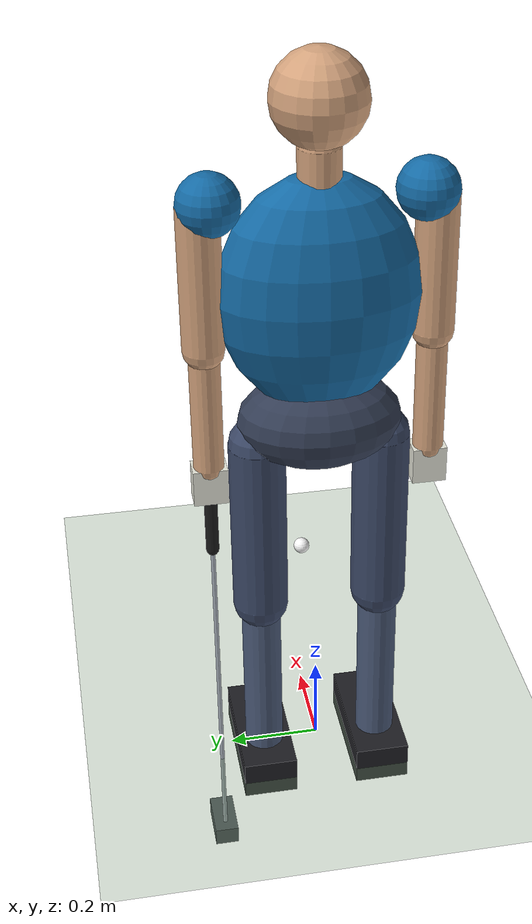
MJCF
<?xml version='1.0' encoding='utf-8'?>
<mujoco model="golfista">
    <!-- SI: metros, kg, segundos. Angulos XML em graus; qpos e controlos em radianos. -->
    <compiler angle="degree" autolimits="true" />

    <!--integrator="implicitfast" é o algoritmo numérico usado pelo MuJoCo
     para avançar a dinâmica.-->
    <!--Quando existem contactos e restrições, o MuJoCo tem de resolver
    numericamente essas restrições. Permitimos até 100 iterações-->
    <!--A tolerance é usada pelo solver para decidir quando uma solução está
    suficientemente convergida-->
    <!-- O cone="elliptic" Controla o modelo de cone de atrito.-->
    <option timestep=".001" gravity="0 0 -9.81" integrator="implicitfast" iterations="100" tolerance="1e-10" cone="elliptic" />

    <statistic center="0.15 0 0.9" extent="2.4" />
    <visual>
        <global offwidth="1280" offheight="960" />
    </visual>
    <default>
        <joint damping="1" armature=".015" />
        <geom contype="0" conaffinity="0" rgba=".83 .64 .49 1" />
    </default>
    <worldbody>
        <light pos="1 -3 4" dir="-0.2 0.5 -1" />
        <light pos="-2 2 3" diffuse=".5 .5 .5" />
        <!-- x: frente do jogador; y: esquerda; z: cima. Geometrias humanas sem auto-colisao nesta fase. -->
        <geom name="chao" type="plane" size="4 4 .1" rgba=".45 .58 .43 1" contype="1" conaffinity="6" friction=".9 .01 .001" condim="6" solref=".01 1" />
        <body name="pelvis" pos="-.05 0 .90">
            <!-- Bacia livre: nao existe apoio invisivel nem fixacao ao mundo. -->
            <freejoint name="base_livre" />
            <geom name="pelvis_geom" type="ellipsoid" size=".12 .17 .10" mass="10" rgba=".2 .24 .33 1" />
            <!-- Perna esq: anca 3 eixos, joelho 1, tornozelo 2. Massas aproximadas. -->
            <body name="coxa_esq" pos="0 0.13 -.05">
                <joint name="anca_esq_yaw" type="hinge" axis="0 0 1" range="-50 50" />
                <joint name="anca_esq_roll" type="hinge" axis="1 0 0" range="-45 45" />
                <joint name="anca_esq_pitch" type="hinge" axis="0 1 0" range="-110 50" />
                <geom type="capsule" fromto="0 0 0 0 0 -.40" size=".06" mass="7" rgba=".23 .28 .40 1" />
                <body name="canela_esq" pos="0 0 -.40">
                    <joint name="joelho_esq" type="hinge" axis="0 1 0" range="0 145" />
                    <geom type="capsule" fromto="0 0 0 0 0 -.40" size=".043" mass="3.5" rgba=".29 .35 .47 1" />
                    <body name="pe_esq" pos="0 0 -.40">
                        <joint name="tornozelo_esq_pitch" type="hinge" axis="0 1 0" range="-50 40" />
                        <joint name="tornozelo_esq_roll" type="hinge" axis="1 0 0" range="-30 30" />
                        <geom name="sola_esq" type="box" pos=".045 0 -.045" size=".14 .06 .045" mass="1" rgba=".12 .12 .14 1" contype="2" conaffinity="1" condim="6" friction=".9 .01 .001" solref=".01 1" />
                        <site name="apoio_esq" pos=".045 0 -.09" size=".007" rgba="1 .8 0 1" />
                    </body>
                </body>
            </body>
            <!-- Perna dir: anca 3 eixos, joelho 1, tornozelo 2. Massas aproximadas. -->
            <body name="coxa_dir" pos="0 -0.13 -.05">
                <joint name="anca_dir_yaw" type="hinge" axis="0 0 1" range="-50 50" />
                <joint name="anca_dir_roll" type="hinge" axis="1 0 0" range="-45 45" />
                <joint name="anca_dir_pitch" type="hinge" axis="0 1 0" range="-110 50" />
                <geom type="capsule" fromto="0 0 0 0 0 -.40" size=".06" mass="7" rgba=".23 .28 .40 1" />
                <body name="canela_dir" pos="0 0 -.40">
                    <joint name="joelho_dir" type="hinge" axis="0 1 0" range="0 145" />
                    <geom type="capsule" fromto="0 0 0 0 0 -.40" size=".043" mass="3.5" rgba=".29 .35 .47 1" />
                    <body name="pe_dir" pos="0 0 -.40">
                        <joint name="tornozelo_dir_pitch" type="hinge" axis="0 1 0" range="-50 40" />
                        <joint name="tornozelo_dir_roll" type="hinge" axis="1 0 0" range="-30 30" />
                        <geom name="sola_dir" type="box" pos=".045 0 -.045" size=".14 .06 .045" mass="1" rgba=".12 .12 .14 1" contype="2" conaffinity="1" condim="6" friction=".9 .01 .001" solref=".01 1" />
                        <site name="apoio_dir" pos=".045 0 -.09" size=".007" rgba="1 .8 0 1" />
                    </body>
                </body>
            </body>
            <body name="tronco" pos="0 0 .08">
                <!-- Tronco relativo a bacia: rotacao axial, inclinacao lateral e flexao. -->
                <joint name="tronco_yaw" type="hinge" axis="0 0 1" range="-70 70" />
                <joint name="tronco_roll" type="hinge" axis="1 0 0" range="-35 35" />
                <joint name="tronco_pitch" type="hinge" axis="0 1 0" range="-25 55" />
                <geom type="ellipsoid" pos="0 0 .20" size=".12 .205 .25" mass="25" rgba=".08 .42 .65 1" />
                <geom type="capsule" fromto="0 0 .43 0 0 .50" size=".043" mass=".5" />
                <geom name="cabeca" type="sphere" pos="0 0 .59" size=".095" mass="4.5" />
                <geom name="ombro_visual_esq" type="sphere" pos="0 0.21 .40" size=".063" mass="0" rgba=".08 .42 .65 1" />
                <body name="braco_esq" pos="0 0.23 .40">
                    <!-- Ombro com 3 eixos: nao confundir rotacao axial com a pronacao do antebraco. -->
                    <joint name="ombro_esq_pitch" type="hinge" axis="0 -1 0" range="-70 170" />
                    <joint name="ombro_esq_roll" type="hinge" axis="1 0 0" range="-80 150" />
                    <joint name="ombro_esq_axial" type="hinge" axis="0 0 1" range="-100 100" />
                    <geom type="capsule" fromto="0 0 0 0 0 -.30" size=".043" mass="3" />
                    <body name="cotovelo_body_esq" pos="0 0 -.30">
                        <joint name="cotovelo_esq" type="hinge" axis="0 -1 0" range="0 145" />
                        <geom type="sphere" size=".035" mass=".1" />
                        <body name="antebraco_esq">
                            <joint name="pronacao_esq" type="hinge" axis="0 0 1" range="-100 100" />
                            <geom type="capsule" fromto="0 0 0 0 0 -.27" size=".032" mass="1.4" />
                            <body name="mao_esq" pos="0 0 -.27">
                                <joint name="pulso_esq_flex" type="hinge" axis="0 1 0" range="-80 80" />
                                <joint name="pulso_esq_desvio" type="hinge" axis="1 0 0" range="-40 40" />
                                <geom name="luva_esq" type="box" pos="0 0 -.04" size=".025 .036 .04" mass=".4" rgba=".92 .92 .87 1" />
                                <site name="pega_mao_esq" pos="0 0 -.04" size=".006" rgba="1 .2 .1 1" />
                                <!-- Taco rigidamente ligado a mao esquerda; a mao direita fecha a cadeia por weld. -->
                                <body name="taco" pos="0 0 -.04">
                                    <geom name="punho_taco" type="capsule" fromto="0 0 .035 0 0 -.17" size=".014" mass=".05" rgba=".1 .1 .1 1" />
                                    <geom name="haste_taco" type="capsule" fromto="0 0 -.17 0 0 -1.00" size=".005" mass=".10" rgba=".65 .68 .72 1" contype="4" conaffinity="9" />
                                    <geom name="cabeca_taco" type="box" pos=".025 0 -1.00" size=".055 .027 .022" mass=".20" rgba=".25 .27 .3 1" contype="4" conaffinity="9" solref=".005 1" />
                                    <site name="pega_taco_dir" pos="0 0 -.09" size=".006" rgba=".2 1 .1 1" />
                                    <site name="centro_cabeca_taco" pos=".025 0 -1.00" size=".004" />
                                </body>
                            </body>
                        </body>
                    </body>
                </body>
                <geom name="ombro_visual_dir" type="sphere" pos="0 -0.21 .40" size=".063" mass="0" rgba=".08 .42 .65 1" />
                <body name="braco_dir" pos="0 -0.23 .40">
                    <!-- Ombro com 3 eixos: nao confundir rotacao axial com a pronacao do antebraco. -->
                    <joint name="ombro_dir_pitch" type="hinge" axis="0 -1 0" range="-70 170" />
                    <joint name="ombro_dir_roll" type="hinge" axis="-1 0 0" range="-80 150" />
                    <joint name="ombro_dir_axial" type="hinge" axis="0 0 1" range="-100 100" />
                    <geom type="capsule" fromto="0 0 0 0 0 -.30" size=".043" mass="3" />
                    <body name="cotovelo_body_dir" pos="0 0 -.30">
                        <joint name="cotovelo_dir" type="hinge" axis="0 -1 0" range="0 145" />
                        <geom type="sphere" size=".035" mass=".1" />
                        <body name="antebraco_dir">
                            <joint name="pronacao_dir" type="hinge" axis="0 0 1" range="-100 100" />
                            <geom type="capsule" fromto="0 0 0 0 0 -.27" size=".032" mass="1.4" />
                            <body name="mao_dir" pos="0 0 -.27">
                                <joint name="pulso_dir_flex" type="hinge" axis="0 1 0" range="-80 80" />
                                <joint name="pulso_dir_desvio" type="hinge" axis="1 0 0" range="-40 40" />
                                <geom name="luva_dir" type="box" pos="0 0 -.04" size=".025 .036 .04" mass=".4" rgba=".92 .92 .87 1" />
                                <site name="pega_mao_dir" pos="0 0 -.04" size=".006" rgba="1 .2 .1 1" />
                            </body>
                        </body>
                    </body>
                </body>
            </body>
        </body>
        <!-- Bola livre, sem contacto inicial com o taco. Sem aerodinamica nesta fase. -->
        <body name="bola" pos=".7155 -.095 .02135">
            <freejoint name="bola_livre" />
            <geom name="bola_geom" type="sphere" size=".02135" mass=".0459" rgba=".98 .98 .98 1" contype="8" conaffinity="5" condim="6" friction=".35 .001 .0002" solref=".005 1" />
        </body>
    </worldbody>
    <equality>
        <!-- Pega idealizada sem deslizamento. Impoe posicao e orientacao relativas; nao simula dedos. -->
        <weld name="pega_direita" site1="pega_mao_dir" site2="pega_taco_dir" solref=".015 1" solimp=".95 .99 .001" torquescale=".08" />
    </equality>
    <actuator>
        <!-- Motores de binario, gear=1. Controlador PD e compensacao estatica no Python. -->
        <motor name="motor_anca_esq_yaw" joint="anca_esq_yaw" gear="1" ctrllimited="true" ctrlrange="-150 150" />
        <motor name="motor_anca_esq_roll" joint="anca_esq_roll" gear="1" ctrllimited="true" ctrlrange="-150 150" />
        <motor name="motor_anca_esq_pitch" joint="anca_esq_pitch" gear="1" ctrllimited="true" ctrlrange="-180 180" />
        <motor name="motor_joelho_esq" joint="joelho_esq" gear="1" ctrllimited="true" ctrlrange="-150 150" />
        <motor name="motor_tornozelo_esq_pitch" joint="tornozelo_esq_pitch" gear="1" ctrllimited="true" ctrlrange="-120 120" />
        <motor name="motor_tornozelo_esq_roll" joint="tornozelo_esq_roll" gear="1" ctrllimited="true" ctrlrange="-90 90" />
        <motor name="motor_anca_dir_yaw" joint="anca_dir_yaw" gear="1" ctrllimited="true" ctrlrange="-150 150" />
        <motor name="motor_anca_dir_roll" joint="anca_dir_roll" gear="1" ctrllimited="true" ctrlrange="-150 150" />
        <motor name="motor_anca_dir_pitch" joint="anca_dir_pitch" gear="1" ctrllimited="true" ctrlrange="-180 180" />
        <motor name="motor_joelho_dir" joint="joelho_dir" gear="1" ctrllimited="true" ctrlrange="-150 150" />
        <motor name="motor_tornozelo_dir_pitch" joint="tornozelo_dir_pitch" gear="1" ctrllimited="true" ctrlrange="-120 120" />
        <motor name="motor_tornozelo_dir_roll" joint="tornozelo_dir_roll" gear="1" ctrllimited="true" ctrlrange="-90 90" />
        <motor name="motor_tronco_yaw" joint="tronco_yaw" gear="1" ctrllimited="true" ctrlrange="-120 120" />
        <motor name="motor_tronco_roll" joint="tronco_roll" gear="1" ctrllimited="true" ctrlrange="-120 120" />
        <motor name="motor_tronco_pitch" joint="tronco_pitch" gear="1" ctrllimited="true" ctrlrange="-160 160" />
        <motor name="motor_ombro_esq_pitch" joint="ombro_esq_pitch" gear="1" ctrllimited="true" ctrlrange="-80 80" />
        <motor name="motor_ombro_esq_roll" joint="ombro_esq_roll" gear="1" ctrllimited="true" ctrlrange="-80 80" />
        <motor name="motor_ombro_esq_axial" joint="ombro_esq_axial" gear="1" ctrllimited="true" ctrlrange="-50 50" />
        <motor name="motor_cotovelo_esq" joint="cotovelo_esq" gear="1" ctrllimited="true" ctrlrange="-50 50" />
        <motor name="motor_pronacao_esq" joint="pronacao_esq" gear="1" ctrllimited="true" ctrlrange="-20 20" />
        <motor name="motor_pulso_esq_flex" joint="pulso_esq_flex" gear="1" ctrllimited="true" ctrlrange="-20 20" />
        <motor name="motor_pulso_esq_desvio" joint="pulso_esq_desvio" gear="1" ctrllimited="true" ctrlrange="-20 20" />
        <motor name="motor_ombro_dir_pitch" joint="ombro_dir_pitch" gear="1" ctrllimited="true" ctrlrange="-80 80" />
        <motor name="motor_ombro_dir_roll" joint="ombro_dir_roll" gear="1" ctrllimited="true" ctrlrange="-80 80" />
        <motor name="motor_ombro_dir_axial" joint="ombro_dir_axial" gear="1" ctrllimited="true" ctrlrange="-50 50" />
        <motor name="motor_cotovelo_dir" joint="cotovelo_dir" gear="1" ctrllimited="true" ctrlrange="-50 50" />
        <motor name="motor_pronacao_dir" joint="pronacao_dir" gear="1" ctrllimited="true" ctrlrange="-20 20" />
        <motor name="motor_pulso_dir_flex" joint="pulso_dir_flex" gear="1" ctrllimited="true" ctrlrange="-20 20" />
        <motor name="motor_pulso_dir_desvio" joint="pulso_dir_desvio" gear="1" ctrllimited="true" ctrlrange="-20 20" />
    </actuator>
    <custom>
        <numeric name="kp" data="1500 1500 1500 1500 1200 1200 1500 1500 1500 1500 1200 1200 700 700 900 450 450 250 250 100 100 100 450 450 250 250 100 100 100" />
        <numeric name="kd" data="80 80 80 70 60 60 80 80 80 70 60 60 45 45 55 25 25 15 15 6 6 6 25 25 15 15 6 6 6" />
    </custom>
    <keyframe>
        <key name="preparacao" qpos="-0.05 0 0.9 1 0 0 0 1.06592938965e-18 0.0918220982 -0.3286827892 0.604981490488 -0.276298701287 -0.0918220982 6.39928357764e-18 -0.0918220982 -0.3286827892 0.604981490488 -0.276298701287 0.0918220982 0 0 0.349065850399 0.360001555338 -0.620861366438 0.0459151497378 1.14647702996 -0.358407694393 0.832558391134 0.310278440231 0.726051744609 -0.506042720274 -0.359281764433 0.428164837228 0.381114900346 0.425447649001 -0.351104087394 0.7155 -0.095 0.02135 1 0 0 0" />
    </keyframe>
</mujoco>
